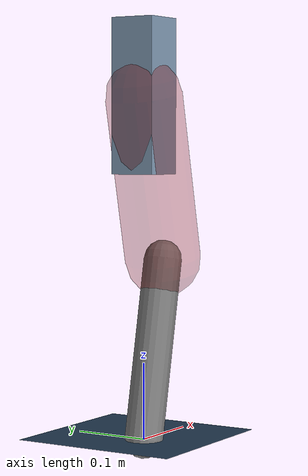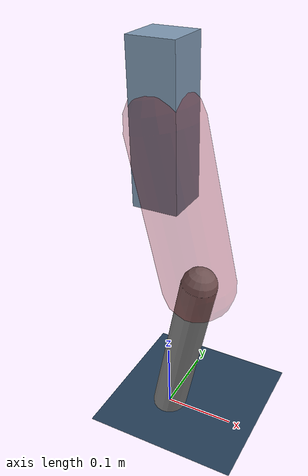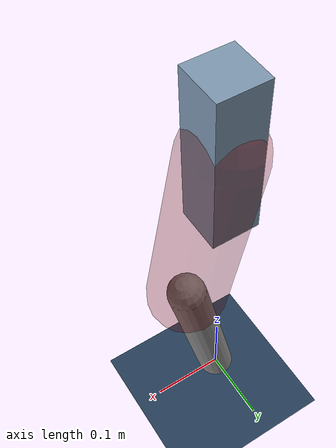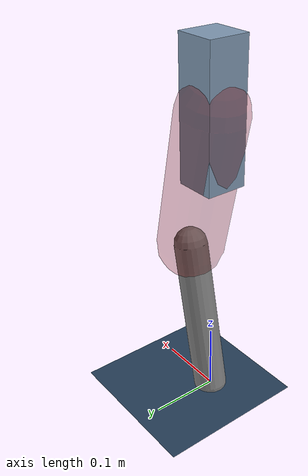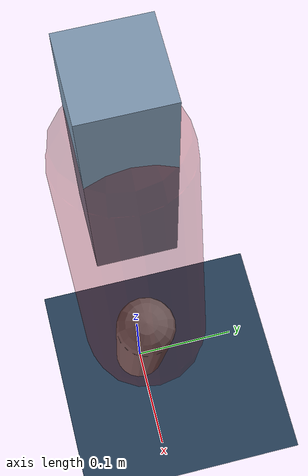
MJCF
<mujoco model="Hopper2D">
	<compiler inertiafromgeom="true" angle="radian" />
	<option timestep="0.001" integrator="implicit" cone="elliptic" solver="Newton" tolerance="1e-10" />

	<default>
		<geom contype="1" conaffinity="1" condim="3" friction="2 0.005 0.0001" solref="0.005 1" />
		<joint limited="true" damping="0.1" />
	</default>

	<asset>
		<texture name="skybox" type="skybox" builtin="gradient" rgb1=".4 .6 .8" rgb2="0 0 0" width="800" height="800" />
		<texture name="grid" type="2d" builtin="checker" rgb1=".1 .2 .3" rgb2=".2 .3 .4" width="300" height="300" mark="edge" markrgb=".2 .3 .4" />
		<material name="ground" texture="grid" texrepeat="1 1" texuniform="true" reflectance="0.1" />
		<material name="leg" rgba="0.5 0.6 0.7 1" />
	</asset>

	<worldbody>

		<geom name="floor" type="plane" size="5 5 0.25" material="ground" />

		<light directional="false" diffuse="0.8 0.8 0.8" specular="0.3 0.3 0.3" pos="0 0 2" dir="0 0 -1" />
		<light mode="targetbodycom" target="base" directional="false" diffuse="0.8 0.8 0.8" specular="0.3 0.3 0.3" pos="0 0 2" dir="0 0 -1" />

		<camera name="fixed" pos="0 -2 1" xyaxes="1 0 0 0 0 1" />
		<camera name="tracking" mode="trackcom" pos="0 -3 1" />

		<body name="root" pos="0 0 0.44541625060696427">
			<joint name="slide_x" type="slide" axis="1 0 0" range="-100 100" />
			<joint name="slide_z" type="slide" axis="0 0 1" range="0 10" />

			<body name="base" pos="0 0 0">
				<geom name="torso" type="box" size="0.03 0.03 0.1" mass="2.151" material="leg" />

				<body name="link1" pos="0 0 0" euler="0 1.3511861950524324 0">
					<joint type="hinge" axis="0 -1 0" pos="0 0 0" name="hinge1" limited="true" range="-3.14 3.14" stiffness="0" damping="0.1" />
					<geom name="thigh" type="capsule" fromto="0 0 0 0.21761547341808363 0 0" size="0.05" rgba="0.5 0 0 0.3" mass="0.773638683545209" />

					<body name="link2" pos="0.21761547341808363 0 0" euler="0 0.42031223693260295 0">
						<joint type="hinge" axis="0 -1 0" pos="0 0 0" name="hinge2" limited="true" range="-3.14 3.14" stiffness="0" damping="0.1" />
						<geom name="shank" type="capsule" fromto="0 0 0 0.23780077718888065 0 0" size="0.025" mass="0.43244062175110454" />

					</body>
				</body>
			</body>
		</body>
	</worldbody>

	<actuator>
		<motor name="torque1" joint="hinge1" ctrlrange="-99.14122591356397 99.14122591356397" ctrllimited="true" gear="1" />
		<motor name="torque2" joint="hinge2" ctrlrange="-52.30240934514554 52.30240934514554" ctrllimited="true" gear="1" />
	</actuator>
</mujoco>
